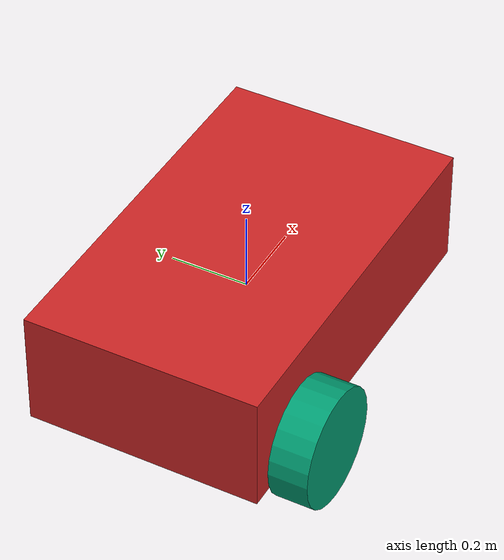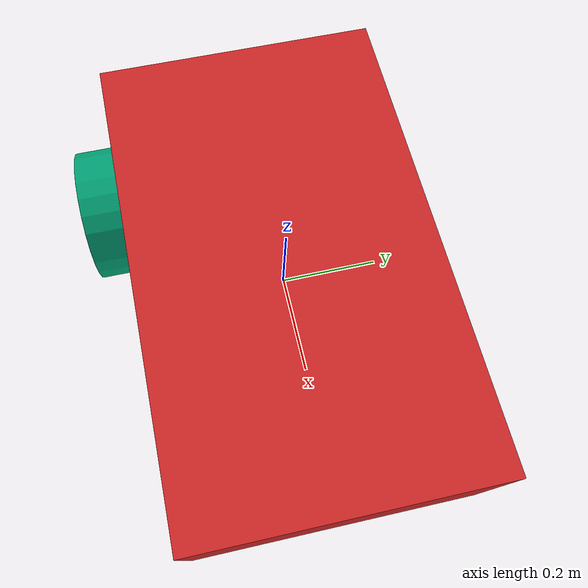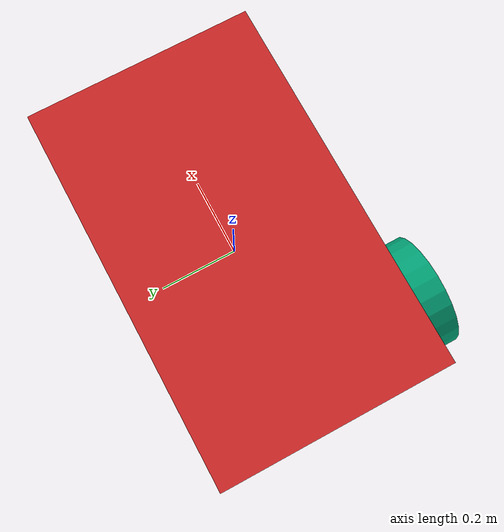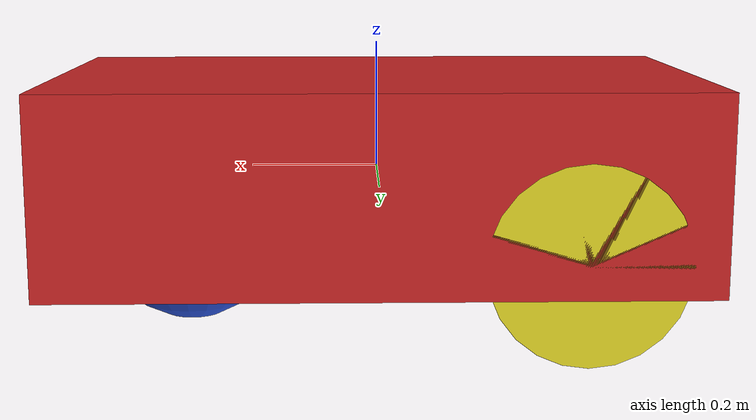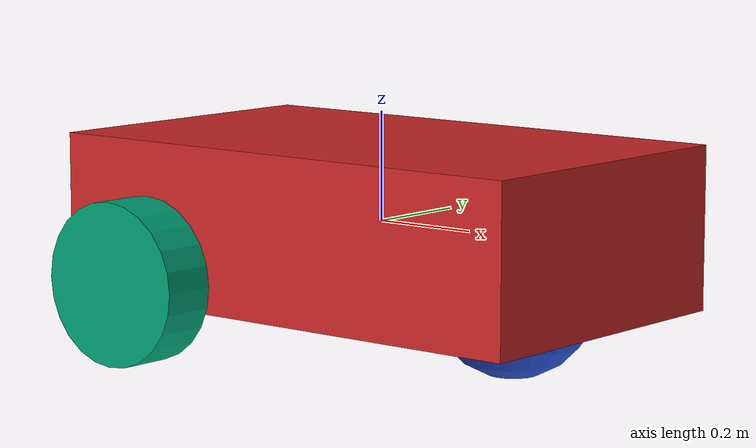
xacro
<?xml version="1.0"?>

<robot name = "differential_drive_robot" xmlns:xacro="http://www.ros.org/wiki/xacro">

<!-- Body dimensions -->
<xacro:property name="body_link_x_dim" value="1"/>
<xacro:property name="body_link_y_dim" value="0.6"/>
<xacro:property name="body_link_z_dim" value="0.3"/>

<!-- Wheel dimensions and loacations -->
<xacro:property name="wheel_link_radius" value="0.15"/>
<xacro:property name="wheel_link_length" value="0.1"/>
<xacro:property name="wheel_link_z_location" value="-0.1"/>

<!-- Caster sphere dimensions ans locations -->
<xacro:property name="caster_link_radius" value="0.15"/>
<xacro:property name="caster_link_z_location" value="-0.1"/>

<!-- Material density -->
<xacro:property name="body_density" value="2710.0"/>
<xacro:property name="wheel_density" value="2710.0"/>
<xacro:property name="caster_density" value="2710.0"/>

<!-- Pi constant -->
<xacro:property name="pi_const" value="3.14159265359"/>

<!-- Robot body, mass, wheel mass, caster wheel mass -->
<!-- Robot body mass, wheel mass, caster mass -->
<xacro:property name="body_mass" value="${body_density*body_link_x_dim*body_link_y_dim*body_link_z_dim}"/>
<xacro:property name="wheel_mass" value="${wheel_density*pi_const*wheel_link_radius*wheel_link_radius*wheel_link_length}"/>
<xacro:property name="caster_mass" value="${caster_density*(4.0/3.0)*pi_const*caster_link_radius*caster_link_radius*caster_link_radius}"/>

 <!-- Moments of inertia of the wheel -->
 <!-- Moment of inertia in the z-direction -->
<xacro:property name="Iz_wheel" value="${0.5*wheel_mass*wheel_link_radius*wheel_link_radius}" />      <!-- Moment of inertia in the z-direction -->
<!-- Moment of Inertia for the direction perpendicular to the vertical direction -->
<xacro:property name="I_wheel" value="${(1.0/12.0)*wheel_mass*(3.0*wheel_link_radius*wheel_link_radius+wheel_link_length*wheel_link_length)}"/>

<!-- Moments of inertia of the caster sphere -->
<xacro:property name="I_caster" value="${(2.0/5.0)*caster_mass*caster_link_radius*caster_link_radius}" />

<!--This macro defines the complete inertial section of the wheel-->
<!-- It is used later in the code -->
<xacro:macro name="inertia_wheel">
  <inertial>
  <origin rpy="0 0 0" xyz="0 0 0"/>
  <mass value="${wheel_mass}"/>
  <!--* specifying inertia tensor -->
  <inertia ixx="${I_wheel}" ixy="0.0" ixz="0.0" iyy="${I_wheel}" iyz="0" izz="${Iz_wheel}" />
  </inertial>
</xacro:macro>

<!-- This macro defines the complete inertial section of the caster -->
<!--  It is used later in the code  -->
<xacro:macro name="inertia_caster">
  <inertial>
  <origin rpy="0 0 0" xyz="0 0 0"/>
  <mass value="${caster_mass}"/>
  <!--* specifying inertia tensor -->
  <inertia ixx="${I_caster}" ixy="0.0" ixz="0.0" iyy="${I_caster}" iyz="0" izz="${I_caster}" />
  </inertial>
</xacro:macro>

<!-- Here we include the file that defines extra gazebo options and motion control driver -->
<xacro:include filename="$(find mobile_dd_robot)/model/robot.gazebo"/>

<!-- Define links and joins here -->
<!-- we need to have this dummy link, otherwise gazebo will complain -->
<link name='dummy_link'></link>

<joint name="dummy joint" type="fixed">
  <parent link="dummy_link"/>
  <child link="body_link"/>
  <origin xyz="0 0 0" rpy="0 0 0"/>
</joint>

<!-- Body link -->
<link name="body_link">
  <visual>
    <geometry>
      <box size="${body_link_x_dim} ${body_link_y_dim} ${body_link_z_dim}"/>
    </geometry>
    <origin xyz="0 0 0" rpy="0 0 0"/>
  </visual>

  <collision>
    <geometry>
      <box size="${body_link_x_dim} ${body_link_y_dim} ${body_link_z_dim}"/>
    </geometry>
    <origin xyz="0 0 0" rpy="0 0 0"/>
  </collision>

  <inertial>
    <origin xyz="0 0 0" rpy="0 0 0"/>
    <mass value="${body_mass}"/>

    <!-- standard formula for inertia of a box -->
    <inertia
      ixx="${(1/12)*body_mass*(body_link_y_dim*body_link_y_dim+body_link_z_dim*body_link_z_dim)}"
      ixy="0.0"
      ixz="0.0"
      iyy="${(1/12)*body_mass*(body_link_x_dim*body_link_x_dim+body_link_z_dim*body_link_z_dim)}"
      iyz='0'
      izz="${(1/12)*body_mass*(body_link_y_dim*body_link_y_dim+body_link_x_dim*body_link_x_dim)}" />

  </inertial>
</link>

<!-- Back right wheel of the robot- WHEEL ONE -->
<link name = "wheel1_link">
  <visual>
    <!-- wheel1 is flipped 90 degrees in the pitch direction wrt to wheel1_joint -->
    <origin xyz="0 0 0" rpy="1.570795 0 0"/>
    <geometry>
      <cylinder length="${wheel_link_length}" radius="${wheel_link_radius}"/>
    </geometry>
  </visual>

  <collision>
    <origin xyz="0 0 0" rpy="1.570795 0 0"/>
    <geometry>
      <cylinder length="${wheel_link_length}" radius="${wheel_link_radius}"/>
    </geometry>
  </collision>
  <!-- Xacro:iinertial wheel is define in line 43 -->
  <xacro:inertia_wheel/>
</link>

<joint name="wheel1_joint" type="continuous">
  <parent link="body_link"/>
  <child link="wheel1_link"/>
  <!-- -2*wheel_link_radius= -0.3  -body_link_y_dim/2-wheel_link_length/2= -0.35 wheel_link_z_location=0.1-->
  <!-- x direction from origin to link's coordinate -->
  <origin xyz="${-2*wheel_link_radius} ${-body_link_y_dim/2-wheel_link_length/2} ${wheel_link_z_location}" rpy="0 0 0"/>
  <!-- Rotates around the y-axis -->
  <axis xyz="0 1 0"/>
  <limit effort="1000" velocity="1000"/>
  <dynamics damping="1.0" friction="1.0"/>
</joint>

<!-- Back right wheel of the robot- WHEEL TWO -->
<link name = "wheel2_link">
  <visual>
    <!-- wheel1 is flipped 90 degrees in the pitch direction wrt to wheel1_joint -->
    <origin xyz="0 0 0" rpy="1.570795 0 0"/>
    <geometry>
      <cylinder length="${wheel_link_length}" radius="${wheel_link_radius}"/>
    </geometry>
  </visual>

  <collision>
    <origin xyz="0 0 0" rpy="1.570795 0 0"/>
    <geometry>
      <cylinder length="${wheel_link_length}" radius="${wheel_link_radius}"/>
    </geometry>
  </collision>
  <!-- Xacro:iinertial wheel is define in line 43 -->
  <xacro:inertia_wheel/>
</link>

<joint name="wheel2_joint" type="continuous">
  <parent link="body_link"/>
  <child link="wheel2_link"/>
  <!-- -2*wheel_link_radius= -0.3  body_link_y_dim/2-wheel_link_length/2= 0.35 wheel_link_z_location=0.1-->
  <origin xyz="${-2*wheel_link_radius} ${body_link_y_dim/2-wheel_link_length/2} ${wheel_link_z_location}" rpy="0 0 0"/>
  <!-- Rotates around the y-axis -->
  <axis xyz="0 1 0"/>
  <limit effort="1000" velocity="1000"/>
  <dynamics damping="1.0" friction="1.0"/>
</joint>

<!-- CASTER WHEEL -->
<link name = "caster_link">
  <visual>
    <origin xyz="0 0 0" rpy="0 0 0"/>
    <geometry>
      <sphere radius="${caster_link_radius}"/>
    </geometry>
  </visual>

  <collision>
    <origin xyz="0 0 0" rpy="0 0 0"/>
    <geometry>
      <sphere radius="${caster_link_radius}"/>
    </geometry>
  </collision>
  <!-- Xacro:inertial caster is define in line 43 -->
  <xacro:inertia_caster/>
</link>

<joint name="caster_joint" type="fixed">
  <parent link="body_link"/>
  <child link="caster_link"/>
  <!-- 2*wheel_link_radius= 0.3  wheel_link_z_location=0.1 (this is in the downward direction)-->
  <origin xyz="${2*caster_link_radius} 0 ${wheel_link_z_location}" rpy="0 0 0"/>
  <!-- Rotates around the y-axis -->
  <axis xyz="0 1 0"/>
  <limit effort="1000" velocity="1000"/>
  <dynamics damping="1.0" friction="1.0"/>
</joint>

</robot>
